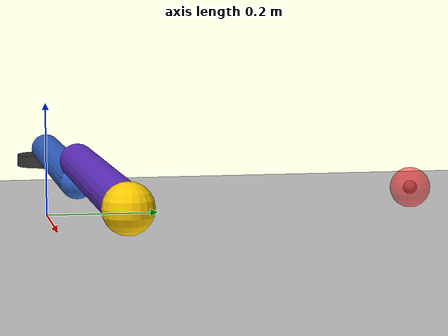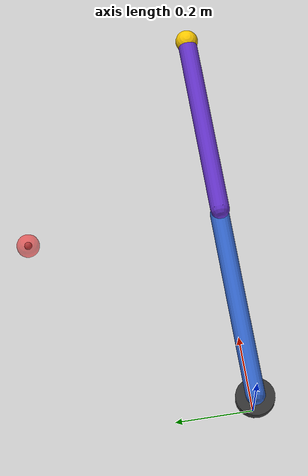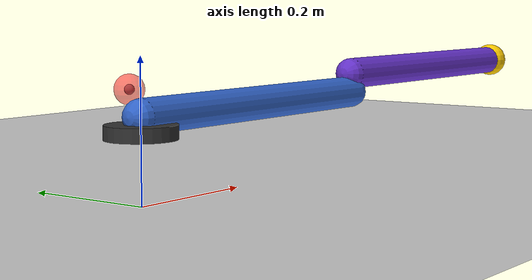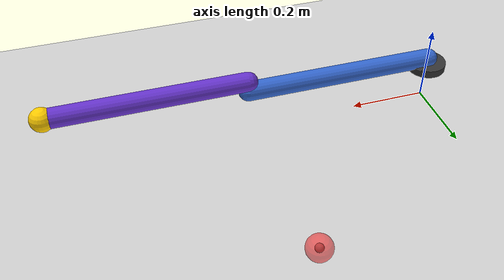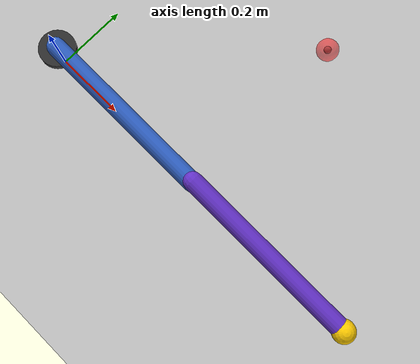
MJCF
<mujoco model="planar_2link_arm">
    <compiler angle="degree" coordinate="local" inertiafromgeom="true"/>
    <option gravity="0 0 -9.81" timestep="0.002"/>
    <default>
        <joint damping="0.1"/>
    </default>
    <worldbody>
        <geom name="floor" type="plane" size="2 2 0.1" rgba="0.8 0.8 0.8 1"/>

        <body name="target_mocap" mocap="true" pos="0.5 0.5 0.1">
            <geom type="sphere" size="0.03" rgba="1 0 0 0.5" contype="0" conaffinity="0"/>
            <site name="target" pos="0 0 0" size="0.01"/>
        </body>

        <body name="base" pos="0 0 0.1">
            <geom name="base_cylinder" type="cylinder" size="0.05 0.01" rgba="0.2 0.2 0.2 1"/>

            <body name="link1" pos="0 0 0.02">
                <joint name="arm1" type="hinge" axis="0 0 1"/>
                <geom name="link1_geom" type="capsule" fromto="0 0 0 0.5 0 0" size="0.025" rgba="0.2 0.4 0.8 1"/>

                <body name="link2" pos="0.5 0 0.03">
                    <joint name="arm2" type="hinge" axis="0 0 1"/>
                    <geom name="link2_geom" type="capsule" fromto="0 0 0 0.5 0 0" size="0.025" rgba="0.4 0.2 0.8 1"/>
                    <site name="ee" pos="0.5 0 0" size="0.03" rgba="1 0.8 0 1"/>
                </body>
            </body>

        </body>
    </worldbody>

    <actuator>
        <motor name="motor1" joint="arm1" ctrlrange="-1 1" ctrllimited="true"/>
        <motor name="motor2" joint="arm2" ctrlrange="-1 1" ctrllimited="true"/>
    </actuator>
</mujoco>
